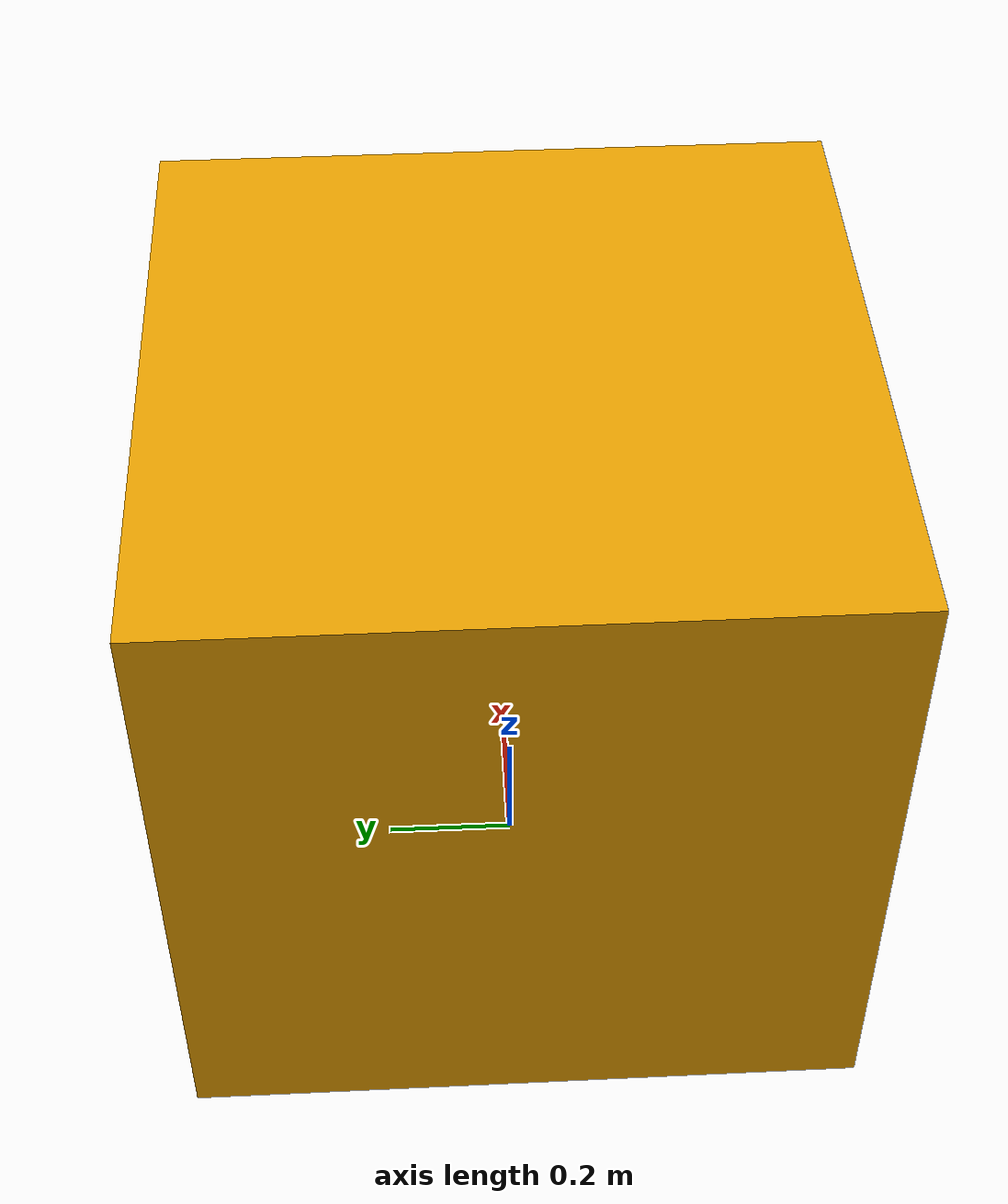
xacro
<?xml version="1.0"?>

<robot name="arm"  xmlns:xacro="http://www.ros.org/wiki/xacro">
<xacro:include filename="$(find my_urdf)/urdf/joints_links.xacro"/>

<m_box name="base_link" size="1 1 1" origin_rpy="0.0 0.0 0.0" origin_xyz="0.0 0.0 0.5"
        mass="1024"
        ixx="170.667" ixy="0" ixz="0"
        iyy="170.667" iyz="0"
        izz="170.667"/>

<m_joint name="base_link_to_link_01" type="revolute" origin_xyz="0.0 0.0 0.5" origin_rpy="0.0 0.0 1"
         axis_xyz="0 0 1" parent="base_link" child="link_01" limit_e="1000.0" limit_v="0.5"
         limit_l="-3.14" limit_u="3.14"/>

<transmission name="trans_base_link_to_link_01">
      <type>transmission_interface/SimpleTransmission</type>
      <joint name="base_link_to_link_01">
        <hardwareInterface>hardware_interface/EffortJointInterface</hardwareInterface>
      </joint>
      <actuator name="motor_base_link_to_link_01">
        <hardwareInterface>hardware_interface/EffortJointInterface</hardwareInterface>
        <mechanicalReduction>1</mechanicalReduction>
      </actuator>
    </transmission>

<m_cylinder name="link_01" length="0.4" radius="0.4" origin_rpy="0.0 0.0 0.0" origin_xyz="0.0 0.0 0.2"
             mass="157.633"
              ixx="13.235" ixy="0" ixz="0"
              iyy="13.235" iyz="0"
              izz="9.655"/>

</robot>

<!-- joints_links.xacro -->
<robot xmlns:xacro="http://www.ros.org/wiki/xacro">

 <xacro:macro name="m_joint" params="name type axis_xyz origin_rpy origin_xyz parent child limit_e limit_l limit_u limit_v">
    <joint name="${name}" type="${type}">
      <axis xyz="${axis_xyz}" />
      <limit effort="${limit_e}" lower="${limit_l}" upper="${limit_u}" velocity="${limit_v}" />
      <origin rpy="${origin_rpy}" xyz="${origin_xyz}" />
      <parent link="${parent}" />
      <child link="${child}" />
    </joint>
    </xacro:macro>

  <xacro:macro name="f_joint" params="name type origin_rpy origin_xyz parent child ">
    <joint name="${name}" type="${type}">
        <origin xyz="${origin_xyz}" rpy="${origin_rpy}"/>
        <parent link="${parent}"/>
        <child link="${child}"/>
    </joint>
  </xacro:macro>

  <xacro:macro name="c_joint" params="name type origin_rpy origin_xyz parent child axis_xyz ">
    <joint name="${name}" type="${type}">
        <axis xyz="${axis_xyz}"/>
        <origin xyz="${origin_xyz}" rpy="${origin_rpy}"/>
        <parent link="${parent}"/>
        <child link="${child}"/>
    </joint>
  </xacro:macro>

  <xacro:macro name="m_box" params="name origin_xyz origin_rpy size mass ixx ixy ixz iyy iyz izz">
    <link name="${name}">
      <inertial>
        <mass value="${mass}" />
        <origin rpy="${origin_rpy}" xyz="${origin_xyz}" />
        <inertia ixx="${ixx}" ixy="${ixy}" ixz="${ixz}" iyy="${iyy}" iyz="${iyz}" izz="${izz}" />
      </inertial>
      <collision>
        <origin rpy="${origin_rpy}" xyz="${origin_xyz}" />
        <geometry>
          <box size="${size}" />
        </geometry>
      </collision>
      <visual>
        <origin rpy="${origin_rpy}" xyz="${origin_xyz}" />
        <geometry>
          <box size="${size}" />
        </geometry>
      </visual>
    </link>
  </xacro:macro>

<xacro:macro name="m_cylinder" params="name origin_xyz origin_rpy radius length mass ixx ixy ixz iyy iyz izz">
 <link name="${name}">
      <inertial>
        <mass value="${mass}" />
        <origin rpy="${origin_rpy}" xyz="${origin_xyz}" />
        <inertia ixx="${ixx}" ixy="${ixy}" ixz="${ixz}" iyy="${iyy}" iyz="${iyz}" izz="${izz}" />
      </inertial>
      <collision>
        <origin rpy="${origin_rpy}" xyz="${origin_xyz}" />
        <geometry>
          <cylinder radius="${radius}" length="${length}" />
        </geometry>
      </collision>
      <visual>
        <origin rpy="${origin_rpy}" xyz="${origin_xyz}" />
        <geometry>
          <cylinder radius="${radius}" length="${length}" />
        </geometry>
      </visual>
    </link>
 </xacro:macro>
</robot>
